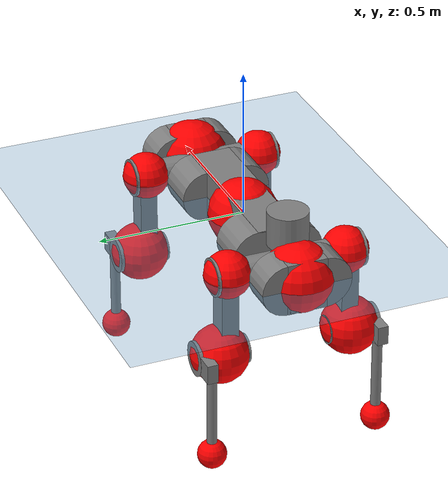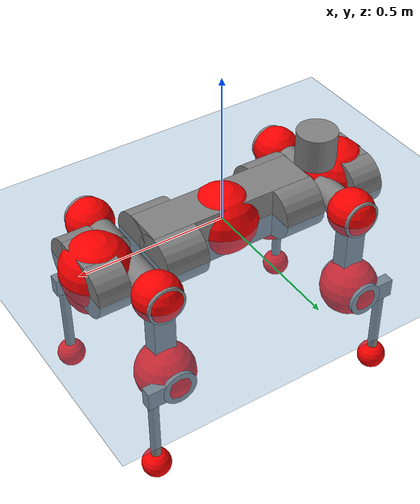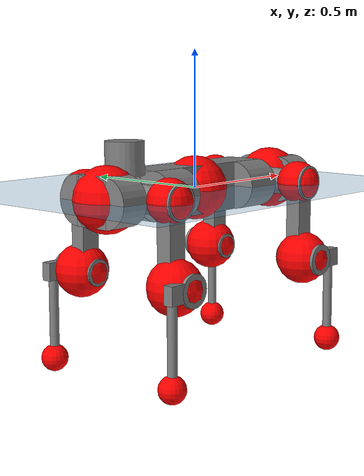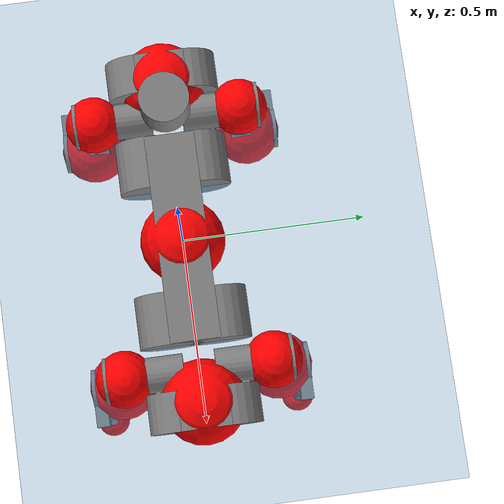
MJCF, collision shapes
<mujoco model="anymal_c">
  <compiler angle="radian" assetdir="assets" balanceinertia="true" inertiafromgeom="false"/>

  <option timestep="0.005" density="1.2" viscosity="2e-05"/>

  <size nkey="1"/>

  <visual>
    <quality shadowsize="8192"/>
    <map shadowclip="0.5"/>
  </visual>

  <default>
    <default class="/">
      <material specular="0" shininess="0.25"/>
      <geom contype="0" conaffinity="0" group="1" solref="-1000 -80"/>
      <site size="0.01 0.005 0.005" group="5"/>
      <general forcelimited="true" forcerange="-80 80" biastype="affine" gainprm="80" biasprm="0 -80 -2"/>
      <default class="anymal_c">
        <joint armature="0.01" damping="0.01" frictionloss="0.1"/>
        <default class="visual">
          <geom type="mesh" group="2"/>
          <default class="visual_zflip"/>
        </default>
        <default class="collision">
          <geom type="cylinder" group="3"/>
          <default class="foot">
            <geom size="0.03 0 0" type="sphere" condim="6" priority="1" friction="0.8 0.02 0.01" solimp="0.015 1 0.03"/>
          </default>
        </default>
      </default>
      <default class="reward_collision_sphere">
        <geom group="5" rgba="1 0 0 1"/>
      </default>
    </default>
  </default>

  <asset>
    <texture type="skybox" colorspace="auto" name="//unnamed_texture_0" builtin="gradient" rgb1="0.95 0.95 0.95" rgb2="0.95 0.95 0.95" width="100" height="600"/>
    <texture type="2d" colorspace="auto" name="texplane" builtin="checker" rgb1="0.345 0.575 0.748" rgb2="0.345 0.575 0.748" markrgb="1 1 1" width="512" height="512"/>
    <texture type="2d" colorspace="linear" name="base" file="base.png"/>
    <texture type="2d" colorspace="linear" name="top_shell" file="top_shell.png"/>
    <texture type="2d" colorspace="linear" name="bottom_shell" file="bottom_shell.png"/>
    <texture type="2d" colorspace="linear" name="remote" file="remote.png"/>
    <texture type="2d" colorspace="linear" name="hatch" file="hatch.png"/>
    <texture type="2d" colorspace="linear" name="handle" file="handle.png"/>
    <texture type="2d" colorspace="linear" name="face" file="face.png"/>
    <texture type="2d" colorspace="linear" name="battery" file="battery.png"/>
    <texture type="2d" colorspace="linear" name="lidar_cage" file="lidar_cage.png"/>
    <texture type="2d" colorspace="linear" name="depth_camera" file="depth_camera.png"/>
    <texture type="2d" colorspace="linear" name="wide_angle_camera" file="wide_angle_camera.png"/>
    <texture type="2d" colorspace="linear" name="lidar" file="lidar.png"/>
    <texture type="2d" colorspace="linear" name="drive" file="drive.png"/>
    <texture type="2d" colorspace="linear" name="hip_l" file="hip_l.png"/>
    <texture type="2d" colorspace="linear" name="shank_l" file="shank_l.png"/>
    <texture type="2d" colorspace="linear" name="foot" file="foot.png"/>
    <texture type="2d" colorspace="linear" name="thigh" file="thigh.png"/>
    <texture type="2d" colorspace="linear" name="shank_r" file="shank_r.png"/>
    <texture type="2d" colorspace="linear" name="hip_r" file="hip_r.png"/>
    <material name="MatPlane" class="/" texture="texplane" texuniform="true" texrepeat="2 2" specular="0.9" shininess="0.5"/>
    <material name="black_plastic" class="/" rgba="0.007 0.007 0.007 1"/>
    <material name="green" class="/" rgba="0.052 0.178 0.033 1"/>
    <material name="red" class="/" rgba="0.178 0.006 0.005 1"/>
    <material name="yellow" class="/" rgba="0.178 0.119 0.006 1"/>
    <material name="lwl" class="/" rgba="0.8 0.8 0.8 1"/>
    <material name="base" class="/" texture="base"/>
    <material name="top_shell" class="/" texture="top_shell"/>
    <material name="bottom_shell" class="/" texture="bottom_shell"/>
    <material name="hip_l" class="/" texture="hip_l"/>
    <material name="thigh" class="/" texture="thigh"/>
    <material name="shank_l" class="/" texture="shank_l"/>
    <material name="foot" class="/" texture="foot"/>
    <material name="hip_r" class="/" texture="hip_r"/>
    <material name="shank" class="/" texture="shank_r"/>
    <material name="hatch" class="/" texture="hatch"/>
    <material name="remote" class="/" texture="remote"/>
    <material name="handle" class="/" texture="handle"/>
    <material name="face" class="/" texture="face"/>
    <material name="depth_camera" class="/" texture="depth_camera"/>
    <material name="wide_angle_camera" class="/" texture="wide_angle_camera"/>
    <material name="battery" class="/" texture="battery"/>
    <material name="lidar_cage" class="/" texture="lidar_cage"/>
    <material name="lidar" class="/" texture="lidar"/>
    <material name="drive" class="/" texture="drive"/>
    <mesh name="base_0" class="/" file="base_0.obj"/>
    <mesh name="base_1" class="/" file="base_1.obj"/>
    <mesh name="base_2" class="/" file="base_2.obj"/>
    <mesh name="base_3" class="/" file="base_3.obj"/>
    <mesh name="base_4" class="/" file="base_4.obj"/>
    <mesh name="base_5" class="/" file="base_5.obj"/>
    <mesh name="top_shell" class="/" file="top_shell.obj"/>
    <mesh name="bottom_shell" class="/" file="bottom_shell.obj"/>
    <mesh name="remote" class="/" file="remote.obj"/>
    <mesh name="handle" class="/" file="handle.obj"/>
    <mesh name="face" class="/" file="face.obj"/>
    <mesh name="wide_angle_camera" class="/" file="wide_angle_camera.obj"/>
    <mesh name="depth_camera" class="/" file="depth_camera.obj"/>
    <mesh name="battery" class="/" file="battery.obj"/>
    <mesh name="lidar_cage" class="/" file="lidar_cage.obj"/>
    <mesh name="lidar" class="/" file="lidar.obj"/>
    <mesh name="drive" class="/" file="drive.obj"/>
    <mesh name="hip_l" class="/" file="hip_l.obj"/>
    <mesh name="thigh" class="/" file="thigh.obj"/>
    <mesh name="shank_l" class="/" file="shank_l.obj"/>
    <mesh name="foot" class="/" file="foot.obj"/>
    <mesh name="hip_r" class="/" file="hip_r.obj"/>
    <mesh name="hatch" class="/" file="hatch.obj"/>
    <mesh name="shank_r" class="/" file="shank_r.obj"/>
  </asset>

  <worldbody>
    <geom name="floor" class="/" size="100 100 0.125" type="plane" group="0" material="MatPlane"/>
    <light name="toplight_shadow" class="/" pos="0 0 5" dir="0.0990148 0.0990148 -0.990148" type="directional" ambient="0.04 0.04 0.04" diffuse="0.55 0.55 0.55" specular="0.12 0.12 0.12"/>
    <light name="toplight_fill" class="/" pos="0 0 5" dir="0.0990148 0.0990148 -0.990148" type="directional" castshadow="false" ambient="0.04 0.04 0.04" diffuse="0.3 0.3 0.3" specular="0.08 0.08 0.08"/>
    <body name="trunk" childclass="anymal_c" pos="-7.19862e-05 -1.08364e-05 0.00013433" quat="1 1.04784e-05 1.87244e-06 3.05328e-06">
      <inertial pos="0.00227186 -0.000488917 0.0491852" quat="0.492298 0.501824 0.501355 0.504439" mass="17.6938" diaginertia="0.585915 0.446851 0.21988"/>
      <joint name="//unnamed_joint_0" type="free" armature="0" damping="0" frictionloss="0"/>
      <geom name="//unnamed_geom_1" class="visual" material="green" mesh="base_0"/>
      <geom name="//unnamed_geom_2" class="visual" material="yellow" mesh="base_1"/>
      <geom name="//unnamed_geom_3" class="visual" material="red" mesh="base_2"/>
      <geom name="//unnamed_geom_4" class="visual" material="black_plastic" mesh="base_3"/>
      <geom name="//unnamed_geom_5" class="visual" material="lwl" mesh="base_4"/>
      <geom name="//unnamed_geom_6" class="visual" material="base" mesh="base_5"/>
      <geom name="trunk_1" class="collision" size="0.282551 0.0682019 0.0876882" type="box"/>
      <geom name="trunk_2" class="collision" size="0.0876882 0.0706377" pos="0.213853 0.065421 0" quat="0.707107 0 0.707107 0"/>
      <geom name="trunk_3" class="collision" size="0.0876882 0.0706377" pos="-0.213853 0.065421 0" quat="0.707107 0 0.707107 0"/>
      <geom name="trunk_4" class="collision" size="0.0876882 0.0706377" pos="0.213853 -0.065421 0" quat="0.707107 0 0.707107 0"/>
      <geom name="trunk_5" class="collision" size="0.0876882 0.0706377" pos="-0.213853 -0.065421 0" quat="0.707107 0 0.707107 0"/>
      <geom name="//unnamed_geom_12" class="visual" material="top_shell" mesh="top_shell"/>
      <geom name="//unnamed_geom_13" class="visual" material="bottom_shell" mesh="bottom_shell"/>
      <geom name="//unnamed_geom_14" class="visual" material="remote" mesh="remote"/>
      <geom name="//unnamed_geom_15" class="visual" material="handle" mesh="handle"/>
      <geom name="//unnamed_geom_16" class="visual" pos="0.407549 0 0" quat="1 0 0 0" material="face" mesh="face"/>
      <geom name="trunk_6" class="collision" size="0.0535872 0.0682019 0.0876882" pos="0.461627 0 0" type="box"/>
      <geom name="//unnamed_geom_18" class="collision" size="0.0876882 0.0535872" pos="0.461627 0.065421 0" quat="0.707107 0 0.707107 0"/>
      <geom name="//unnamed_geom_19" class="collision" size="0.0876882 0.0535872" pos="0.461627 -0.065421 0" quat="0.707107 0 0.707107 0"/>
      <geom name="//unnamed_geom_20" class="visual" pos="0.453909 0 -0.029516" quat="0.965926 0 0.258819 0" material="depth_camera" mesh="depth_camera"/>
      <geom name="//unnamed_geom_21" class="visual" pos="0.504397 0 0.0150467" material="wide_angle_camera" mesh="wide_angle_camera"/>
      <geom name="//unnamed_geom_22" class="visual_zflip" pos="-0.407549 0 0" quat="0 0 0 1" material="face" mesh="face"/>
      <geom name="trunk_7" class="collision" size="0.0535872 0.0682019 0.0876882" pos="-0.461627 0 0" quat="0 0 0 1" type="box"/>
      <geom name="//unnamed_geom_24" class="collision" size="0.0876882 0.0535872" pos="-0.461627 -0.065421 0" quat="0 -0.707107 0 0.707107"/>
      <geom name="//unnamed_geom_25" class="collision" size="0.0876882 0.0535872" pos="-0.461627 0.065421 0" quat="0 -0.707107 0 0.707107"/>
      <geom name="//unnamed_geom_26" class="visual" pos="-0.453909 0 -0.029516" quat="0 -0.258819 0 0.965926" material="depth_camera" mesh="depth_camera"/>
      <geom name="//unnamed_geom_27" class="visual_zflip" pos="-0.504397 0 0.0150467" quat="0 0 0 1" material="wide_angle_camera" mesh="wide_angle_camera"/>
      <geom name="//unnamed_geom_28" class="visual" material="battery" mesh="battery"/>
      <geom name="//unnamed_geom_29" class="visual" pos="0 0.070821 0.0290325" quat="0.683013 -0.183013 0.183013 0.683013" material="depth_camera" mesh="depth_camera"/>
      <geom name="//unnamed_geom_30" class="visual" pos="0 -0.070821 0.0290325" quat="0.683013 0.183013 0.183013 -0.683013" material="depth_camera" mesh="depth_camera"/>
      <geom name="//unnamed_geom_31" class="visual" pos="-0.357896 0 0.0738766" quat="1 0 0 0" material="lidar_cage" mesh="lidar_cage"/>
      <geom name="trunk_8" class="collision" size="0.0682019 0.0584588" pos="-0.357896 0 0.134184"/>
      <geom name="//unnamed_geom_33" class="visual" pos="-0.357896 -1.91113e-05 0.142929" quat="0.707107 0 0 -0.707107" material="lidar" mesh="lidar"/>
      <geom name="//unnamed_geom_34" class="visual" pos="0.294871 0.0972219 -1.21681e-09" quat="0.258819 0.965926 0 0" material="drive" mesh="drive"/>
      <geom name="//unnamed_geom_35" class="visual" pos="0.294871 -0.0972219 1.21681e-09" quat="0.258819 -0.965926 0 0" material="drive" mesh="drive"/>
      <geom name="//unnamed_geom_36" class="visual" pos="-0.294871 0.0972219 1.21681e-09" quat="0 0 0.965926 -0.258819" material="drive" mesh="drive"/>
      <geom name="//unnamed_geom_37" class="visual" pos="-0.294871 -0.0972219 -1.21681e-09" quat="0 0 -0.965926 -0.258819" material="drive" mesh="drive"/>
      <geom name="//unnamed_geom_38" class="visual" pos="0.114055 0 0.0733741" quat="1 0 0 0" material="hatch" mesh="hatch"/>
      <geom name="//unnamed_geom_39" class="reward_collision_sphere" size="0.116918"/>
      <geom name="//unnamed_geom_40" class="reward_collision_sphere" size="0.116918" pos="0.442454 0 0"/>
      <geom name="//unnamed_geom_41" class="reward_collision_sphere" size="0.116918" pos="-0.442454 0 0"/>
      <site name="imu" pos="0.243964 0.00331946 0.046498" size="0.00974313"/>
      <camera name="track" pos="0 -1.86917 0" quat="0.707107 0.707107 0 0" mode="trackcom"/>
      <camera name="ego_camera" pos="0.442454 0 -0.040205" quat="-0.5 -0.5 0.5 0.5"/>
      <body name="LF_HIP" pos="0.294711 0.0993712 0.000792904" quat="0.258762 0.965941 -6.70532e-05 1.54159e-05">
        <inertial pos="0.0552744 -0.0139929 -0.00917957" quat="-0.127305 0.709092 -0.134683 0.680325" mass="2.58015" diaginertia="0.005377 0.0035296 0.00340061"/>
        <joint name="LF_HAA" pos="0 0 0" axis="0.999997 -0.000324809 -0.00242954" range="-0.683016 0.470387" armature="0.00990174" damping="0.00699503" frictionloss="0.094682"/>
        <geom name="//unnamed_geom_42" class="visual" pos="0 -7.15794e-05 1.17569e-05" quat="0.258819 -0.965926 0 0" material="hip_l" mesh="hip_l"/>
        <geom name="//unnamed_geom_43" class="visual" pos="0.0588955 -0.070749 -0.0413687" quat="0.183013 -0.683013 0.683013 0.183013" material="drive" mesh="drive"/>
        <geom name="//unnamed_geom_44" class="collision" size="0.0487157 0.0682019" pos="0.0588955 -0.0111775 -0.00694038" quat="-0.353553 -0.612372 0.612372 -0.353553"/>
        <body name="LF_THIGH" pos="0.0591066 -0.0666878 -0.0418997" quat="0.183009 -0.683166 0.682874 0.182963">
          <inertial pos="0.0301935 -0.000716753 -0.246368" quat="0.992983 -0.00795076 -0.0812577 0.0855545" mass="2.83985" diaginertia="0.0277616 0.0212594 0.00429256"/>
          <joint name="LF_HFE" pos="0 0 0" axis="0.999997 0.00033248 -0.0023553" stiffness="0.000168293" range="-3.16166 3.16018" armature="0.00988067" damping="0.00963518" frictionloss="0.0939328"/>
          <geom name="//unnamed_geom_45" class="visual" pos="0.000967842 1.52509e-06 0" quat="0.707107 0 0 -0.707107" material="thigh" mesh="thigh"/>
          <geom name="//unnamed_geom_46" class="collision" size="0.0633304 0.0389725" pos="0.0393292 0 0" quat="0.5 0.5 -0.5 -0.5"/>
          <geom name="//unnamed_geom_47" class="collision" size="0.0365367 0.0292294 0.137684" pos="0.0294969 0 -0.142038" quat="0.707107 0 0 -0.707107" type="box"/>
          <geom name="//unnamed_geom_48" class="visual" pos="0.098618 0 -0.28646" quat="1 0 0 0" material="drive" mesh="drive"/>
          <geom name="//unnamed_geom_49" class="collision" size="0.0487157 0.0682019" pos="0.0297919 0 -0.28646" quat="0.707107 0 0.707107 0"/>
          <geom name="//unnamed_geom_50" class="reward_collision_sphere" size="0.0779451" pos="0.0245808 0 0"/>
          <body name="LF_SHANK" pos="0.0993133 -0.00153153 -0.286062" quat="1 -8.54305e-05 -0.000373473 0.000149004">
            <inertial pos="0.00470915 -0.0571582 -0.0826504" quat="0.992929 -0.115968 -0.000982342 -0.0253482" mass="0.54211" diaginertia="0.00936451 0.00670441 0.00112986"/>
            <joint name="LF_KFE" pos="0 0 0" axis="0.999994 -0.00190828 -0.00274128" range="-3.17035 3.14364" armature="0.0101565" damping="0.00920741" frictionloss="0.0978685"/>
            <geom name="//unnamed_geom_51" class="visual" pos="0.000315592 0.00168275 0" quat="0.707107 0 0 -0.707107" material="shank_l" mesh="shank_l"/>
            <geom name="LF_kfe_act" class="collision" size="0.0584588 0.0194863" pos="0.0196646 0 0" quat="0.5 0.5 -0.5 -0.5"/>
            <geom name="//unnamed_geom_53" class="collision" size="0.056022 0.0328831 0.018512" pos="0.0196646 -0.0537377 0" quat="0.5 0.5 -0.5 -0.5" type="box"/>
            <geom name="//unnamed_geom_54" class="visual" pos="0.0128311 -0.0816545 -0.339702" quat="0.382683 0 0 -0.92388" material="foot" mesh="foot"/>
            <geom name="LF_calf" class="collision" size="0.0170505 0.137624" pos="0.0128312 -0.0821968 -0.169851" quat="0.707107 0 0 -0.707107"/>
            <geom name="LF_foot" class="foot" size="0.029923" pos="0.0128312 -0.0821968 -0.317087" quat="0.707107 0 0 -0.707107"/>
            <geom name="//unnamed_geom_57" class="reward_collision_sphere" size="0.0974313" pos="-0.0491615 0 0"/>
            <geom name="//unnamed_geom_58" class="reward_collision_sphere" size="0.0487157" pos="0.0128312 -0.0821968 -0.317087"/>
            <site name="LF_foot" class="foot" pos="0.0128312 -0.0821968 -0.317087" quat="0.707107 0 0 -0.707107" size="0.00974313"/>
          </body>
        </body>
      </body>
      <body name="RF_HIP" pos="0.295047 -0.0971546 0.00134694" quat="0.258828 -0.965923 3.91001e-05 5.63972e-06">
        <inertial pos="0.0564547 0.0148005 -0.00821581" quat="0.136052 0.679186 0.12862 0.709685" mass="2.5502" diaginertia="0.00540866 0.00342953 0.00338381"/>
        <joint name="RF_HAA" pos="0 0 0" axis="0.999999 0.00104548 1.00406e-08" range="-0.490287 0.72323" armature="0.00958273" damping="0.00804942" frictionloss="0.0945324"/>
        <geom name="//unnamed_geom_59" class="visual" pos="0 7.15788e-05 1.17568e-05" quat="0.258819 0.965926 0 0" material="hip_r" mesh="hip_r"/>
        <geom name="//unnamed_geom_60" class="visual" pos="0.0588955 0.070749 -0.0413687" quat="0.183013 0.683013 0.683013 -0.183013" material="drive" mesh="drive"/>
        <geom name="//unnamed_geom_61" class="collision" size="0.0487157 0.0682019" pos="0.0588955 0.0111775 -0.00694038" quat="-0.353553 0.612372 0.612372 0.353553"/>
        <body name="RF_THIGH" pos="0.0603829 0.0697436 -0.0433729" quat="0.182668 0.682896 0.683128 -0.183362">
          <inertial pos="0.0313457 -0.00172023 -0.246481" quat="0.993092 -0.00466615 -0.0766537 0.0887216" mass="2.83978" diaginertia="0.0279286 0.0213993 0.00435348"/>
          <joint name="RF_HFE" pos="0 0 0" axis="1 0.000679085 0.000637139" stiffness="0.00160145" range="-3.16715 3.13827" armature="0.00989909" damping="0.00999409" frictionloss="0.0976516"/>
          <geom name="//unnamed_geom_62" class="visual" pos="0.000967842 1.52509e-06 0" quat="0.707107 0 0 -0.707107" material="thigh" mesh="thigh"/>
          <geom name="//unnamed_geom_63" class="collision" size="0.0633304 0.0389725" pos="0.0393292 0 0" quat="0.5 0.5 0.5 0.5"/>
          <geom name="//unnamed_geom_64" class="collision" size="0.0365367 0.0292294 0.137684" pos="0.0294969 0 -0.142038" quat="0.707107 0 0 0.707107" type="box"/>
          <geom name="//unnamed_geom_65" class="visual" pos="0.098618 0 -0.28646" quat="1 0 0 0" material="drive" mesh="drive"/>
          <geom name="//unnamed_geom_66" class="collision" size="0.0487157 0.0682019" pos="0.0297919 0 -0.28646" quat="0.707107 0 0.707107 0"/>
          <geom name="//unnamed_geom_67" class="reward_collision_sphere" size="0.0779451" pos="0.0245808 0 0"/>
          <body name="RF_SHANK" pos="0.0972834 0.000990021 -0.285935" quat="1 0.000240063 8.52112e-05 -0.000177423">
            <inertial pos="0.00471699 0.0571897 -0.0813287" quat="0.993275 0.113584 -0.000960553 0.0223976" mass="0.545378" diaginertia="0.0093785 0.00658009 0.00114342"/>
            <joint name="RF_KFE" pos="0 0 0" axis="0.999955 0.0094485 0.000997259" range="-3.129 3.14129" armature="0.0102976" damping="0.0139212" frictionloss="0.0947609"/>
            <geom name="//unnamed_geom_68" class="visual" pos="0.000315591 -0.00168275 0" quat="0.707107 0 0 0.707107" material="shank" mesh="shank_r"/>
            <geom name="RF_kfe_act" class="collision" size="0.0584588 0.0194863" pos="0.0196646 0 0" quat="0.5 0.5 0.5 0.5"/>
            <geom name="//unnamed_geom_70" class="collision" size="0.056022 0.0328831 0.018512" pos="0.0196646 0.0537377 0" quat="0.5 0.5 0.5 0.5" type="box"/>
            <geom name="//unnamed_geom_71" class="visual" pos="0.0128312 0.0816545 -0.339702" quat="0.382683 0 0 0.92388" material="foot" mesh="foot"/>
            <geom name="RF_calf" class="collision" size="0.0170505 0.137624" pos="0.0128312 0.0821968 -0.169851" quat="0.707107 0 0 0.707107"/>
            <geom name="RF_foot" class="foot" size="0.0305035" pos="0.0128312 0.0821968 -0.317087" quat="0.707107 0 0 0.707107"/>
            <geom name="//unnamed_geom_74" class="reward_collision_sphere" size="0.0974313" pos="-0.0491615 0 0"/>
            <geom name="//unnamed_geom_75" class="reward_collision_sphere" size="0.0487157" pos="0.0128312 0.0821968 -0.317087"/>
            <site name="RF_foot" class="foot" pos="0.0128312 0.0821968 -0.317087" quat="0.707107 0 0 0.707107" size="0.00974313"/>
          </body>
        </body>
      </body>
      <body name="LH_HIP" pos="-0.293837 0.098219 -0.000771489" quat="0.00031872 0.000206823 0.965951 -0.258726">
        <inertial pos="0.056064 0.0137048 -0.00932393" quat="0.134974 0.67952 0.126997 0.709863" mass="2.53608" diaginertia="0.00531466 0.00346798 0.00333059"/>
        <joint name="LH_HAA" pos="0 0 0" axis="1 -4.22864e-05 8.89295e-05" range="-0.486719 0.738455" armature="0.00967892" damping="0.00865506" frictionloss="0.0995709"/>
        <geom name="//unnamed_geom_76" class="visual" pos="0 7.15788e-05 1.17568e-05" quat="-0.258819 -0.965926 0 0" material="hip_r" mesh="hip_r"/>
        <geom name="//unnamed_geom_77" class="visual" pos="0.0588955 0.070749 -0.0413687" quat="0.183013 0.683013 0.683013 -0.183013" material="drive" mesh="drive"/>
        <geom name="//unnamed_geom_78" class="collision" size="0.0487157 0.0682019" pos="0.0588955 0.0111775 -0.00694038" quat="-0.353553 0.612372 0.612372 0.353553"/>
        <body name="LH_THIGH" pos="0.0587669 0.0669978 -0.0439239" quat="0.182905 0.683143 0.682898 -0.183065">
          <inertial pos="0.0305969 -0.000504788 -0.248065" quat="0.993114 -0.00588658 -0.0810358 0.084403" mass="2.87611" diaginertia="0.0275583 0.0208907 0.00424696"/>
          <joint name="LH_HFE" pos="0 0 0" axis="0.999992 -0.000688557 0.00395084" stiffness="0.000594515" range="-3.14435 3.12422" armature="0.0100775" damping="0.00488821" frictionloss="0.0964964"/>
          <geom name="//unnamed_geom_79" class="visual" pos="0.000967842 1.52509e-06 0" quat="0.707107 0 0 -0.707107" material="thigh" mesh="thigh"/>
          <geom name="//unnamed_geom_80" class="collision" size="0.0633304 0.0389725" pos="0.0393292 0 0" quat="0.5 0.5 -0.5 -0.5"/>
          <geom name="//unnamed_geom_81" class="collision" size="0.0365367 0.0292294 0.137684" pos="0.0294969 0 -0.142038" quat="0.707107 0 0 -0.707107" type="box"/>
          <geom name="//unnamed_geom_82" class="visual" pos="0.098618 0 -0.28646" quat="1 0 0 0" material="drive" mesh="drive"/>
          <geom name="//unnamed_geom_83" class="collision" size="0.0487157 0.0682019" pos="0.0297919 0 -0.28646" quat="0.707107 0 0.707107 0"/>
          <geom name="//unnamed_geom_84" class="reward_collision_sphere" size="0.0779451" pos="0.0245808 0 0"/>
          <body name="LH_SHANK" pos="0.0994253 -0.00245475 -0.28754" quat="1 -8.86768e-06 0.000153259 3.4807e-06">
            <inertial pos="0.00523913 0.057107 -0.0816035" quat="0.993079 0.114711 -0.00167236 0.0251613" mass="0.533424" diaginertia="0.00932111 0.00653985 0.00113678"/>
            <joint name="LH_KFE" pos="0 0 0" axis="0.999997 0.0025422 -0.000339899" range="-3.11435 3.14135" armature="0.00960129" damping="0.0139883" frictionloss="0.0975034"/>
            <geom name="//unnamed_geom_85" class="visual" pos="0.000315591 -0.00168275 0" quat="-0.707107 0 0 -0.707107" material="shank" mesh="shank_r"/>
            <geom name="LH_kfe_act" class="collision" size="0.0584588 0.0194863" pos="0.0196646 0 0" quat="0.5 0.5 -0.5 -0.5"/>
            <geom name="//unnamed_geom_87" class="collision" size="0.056022 0.0328831 0.018512" pos="0.0196646 0.0537377 0" quat="0.5 0.5 -0.5 -0.5" type="box"/>
            <geom name="//unnamed_geom_88" class="visual" pos="0.0128312 0.0816545 -0.339702" quat="-0.382683 0 0 -0.92388" material="foot" mesh="foot"/>
            <geom name="LH_calf" class="collision" size="0.0170505 0.137624" pos="0.0128312 0.0821968 -0.169851" quat="0.707107 0 0 -0.707107"/>
            <geom name="LH_foot" class="foot" size="0.029575" pos="0.0128312 0.0821968 -0.317087" quat="0.707107 0 0 -0.707107"/>
            <geom name="//unnamed_geom_91" class="reward_collision_sphere" size="0.0974313" pos="-0.0491615 0 0"/>
            <geom name="//unnamed_geom_92" class="reward_collision_sphere" size="0.0487157" pos="0.0128312 0.0821968 -0.317087"/>
            <site name="LH_foot" class="foot" pos="0.0128312 0.0821968 -0.317087" quat="0.707107 0 0 -0.707107" size="0.00974313"/>
          </body>
        </body>
      </body>
      <body name="RH_HIP" pos="-0.294748 -0.0980916 0.0010636" quat="2.68578e-05 -4.77296e-05 -0.965914 -0.258862">
        <inertial pos="0.0556789 -0.0138916 -0.00796843" quat="-0.127867 0.709876 -0.134769 0.679385" mass="2.53324" diaginertia="0.00531484 0.00343683 0.00338395"/>
        <joint name="RH_HAA" pos="0 0 0" axis="0.999998 0.00205928 0.000669285" range="-0.733349 0.472055" armature="0.00971348" damping="0.00876773" frictionloss="0.0989389"/>
        <geom name="//unnamed_geom_93" class="visual" pos="0 -7.15794e-05 1.17569e-05" quat="-0.258819 0.965926 0 0" material="hip_l" mesh="hip_l"/>
        <geom name="//unnamed_geom_94" class="visual" pos="0.0588955 -0.070749 -0.0413687" quat="-0.183013 0.683013 -0.683013 -0.183013" material="drive" mesh="drive"/>
        <geom name="//unnamed_geom_95" class="collision" size="0.0487157 0.0682019" pos="0.0588955 -0.0111775 -0.00694038" quat="0.353553 0.612372 -0.612372 0.353553"/>
        <body name="RH_THIGH" pos="0.0583946 -0.067878 -0.0429174" quat="-0.182916 0.683303 -0.682883 -0.18251">
          <inertial pos="0.0305349 -0.00109358 -0.247535" quat="0.993115 -0.00422567 -0.0816911 0.0838564" mass="2.85792" diaginertia="0.0281098 0.0214486 0.00433905"/>
          <joint name="RH_HFE" pos="0 0 0" axis="0.999988 0.00365647 -0.00318142" range="-3.13162 3.12637" armature="0.00987884" damping="0.00580821" frictionloss="0.0998458"/>
          <geom name="//unnamed_geom_96" class="visual" pos="0.000967842 1.52509e-06 0" quat="0.707107 0 0 -0.707107" material="thigh" mesh="thigh"/>
          <geom name="//unnamed_geom_97" class="collision" size="0.0633304 0.0389725" pos="0.0393292 0 0" quat="0.5 0.5 0.5 0.5"/>
          <geom name="//unnamed_geom_98" class="collision" size="0.0365367 0.0292294 0.137684" pos="0.0294969 0 -0.142038" quat="0.707107 0 0 0.707107" type="box"/>
          <geom name="//unnamed_geom_99" class="visual" pos="0.098618 0 -0.28646" quat="1 0 0 0" material="drive" mesh="drive"/>
          <geom name="//unnamed_geom_100" class="collision" size="0.0487157 0.0682019" pos="0.0297919 0 -0.28646" quat="0.707107 0 0.707107 0"/>
          <geom name="//unnamed_geom_101" class="reward_collision_sphere" size="0.0779451" pos="0.0245808 0 0"/>
          <body name="RH_SHANK" pos="0.0960785 0.000804998 -0.285614" quat="1 0.000544423 -8.57303e-06 0.000236522">
            <inertial pos="0.00727817 -0.0572217 -0.0808795" quat="0.992745 -0.117839 0.00179245 -0.0238565" mass="0.546194" diaginertia="0.00947279 0.00661839 0.00115559"/>
            <joint name="RH_KFE" pos="0 0 0" axis="1 -5.7889e-05 -2.57624e-05" range="-3.12838 3.15808" armature="0.00928085" damping="0.00852082" frictionloss="0.0982443"/>
            <geom name="//unnamed_geom_102" class="visual" pos="0.000315592 0.00168275 0" quat="0.707107 0 0 -0.707107" material="shank_l" mesh="shank_l"/>
            <geom name="RH_kfe_act" class="collision" size="0.0584588 0.0194863" pos="0.0196646 0 0" quat="0.5 0.5 0.5 0.5"/>
            <geom name="//unnamed_geom_104" class="collision" size="0.056022 0.0328831 0.018512" pos="0.0196646 -0.0537377 0" quat="0.5 0.5 0.5 0.5" type="box"/>
            <geom name="//unnamed_geom_105" class="visual" pos="0.0128311 -0.0816545 -0.339702" quat="0.382683 0 0 -0.92388" material="foot" mesh="foot"/>
            <geom name="RH_calf" class="collision" size="0.0170505 0.137624" pos="0.0128312 -0.0821968 -0.169851" quat="0.707107 0 0 0.707107"/>
            <geom name="RH_foot" class="foot" size="0.0292349" pos="0.0128312 -0.0821968 -0.317087" quat="0.707107 0 0 0.707107"/>
            <geom name="//unnamed_geom_108" class="reward_collision_sphere" size="0.0974313" pos="-0.0491615 0 0"/>
            <geom name="//unnamed_geom_109" class="reward_collision_sphere" size="0.0487157" pos="0.0128312 -0.0821968 -0.317087"/>
            <site name="RH_foot" class="foot" pos="0.0128312 -0.0821968 -0.317087" quat="0.707107 0 0 0.707107" size="0.00974313"/>
          </body>
        </body>
      </body>
    </body>
  </worldbody>

  <contact>
    <pair class="/" geom1="floor" geom2="LF_foot" name="//unnamed_contact_0"/>
    <pair class="/" geom1="floor" geom2="RF_foot" name="//unnamed_contact_1"/>
    <pair class="/" geom1="floor" geom2="LH_foot" name="//unnamed_contact_2"/>
    <pair class="/" geom1="floor" geom2="RH_foot" name="//unnamed_contact_3"/>
  </contact>

  <actuator>
    <general name="LF_HAA" class="/" joint="LF_HAA" forcerange="-84.106 84.106" gainprm="79.692" biasprm="0 -79.692 -1.88642"/>
    <general name="LF_HFE" class="/" joint="LF_HFE" forcerange="-80.3625 80.3625" gainprm="79.692" biasprm="0 -79.692 -1.88642"/>
    <general name="LF_KFE" class="/" joint="LF_KFE" forcerange="-77.1925 77.1925" gainprm="79.692" biasprm="0 -79.692 -1.88642"/>
    <general name="RF_HAA" class="/" joint="RF_HAA" forcerange="-82.2729 82.2729" gainprm="79.692" biasprm="0 -79.692 -1.88642"/>
    <general name="RF_HFE" class="/" joint="RF_HFE" forcerange="-83.346 83.346" gainprm="79.692" biasprm="0 -79.692 -1.88642"/>
    <general name="RF_KFE" class="/" joint="RF_KFE" forcerange="-76.7887 76.7887" gainprm="79.692" biasprm="0 -79.692 -1.88642"/>
    <general name="LH_HAA" class="/" joint="LH_HAA" forcerange="-76.9801 76.9801" gainprm="79.692" biasprm="0 -79.692 -1.88642"/>
    <general name="LH_HFE" class="/" joint="LH_HFE" forcerange="-79.2979 79.2979" gainprm="79.692" biasprm="0 -79.692 -1.88642"/>
    <general name="LH_KFE" class="/" joint="LH_KFE" forcerange="-81.4194 81.4194" gainprm="79.692" biasprm="0 -79.692 -1.88642"/>
    <general name="RH_HAA" class="/" joint="RH_HAA" forcerange="-74.4148 74.4148" gainprm="79.692" biasprm="0 -79.692 -1.88642"/>
    <general name="RH_HFE" class="/" joint="RH_HFE" forcerange="-77.0929 77.0929" gainprm="79.692" biasprm="0 -79.692 -1.88642"/>
    <general name="RH_KFE" class="/" joint="RH_KFE" forcerange="-77.8505 77.8505" gainprm="79.692" biasprm="0 -79.692 -1.88642"/>
  </actuator>

  <sensor>
    <gyro site="imu" name="imu_angular_velocity"/>
    <velocimeter site="imu" name="imu_linear_velocity"/>
    <framelinvel objtype="site" objname="LF_foot" name="LF_foot_global_linear_velocity"/>
    <framelinvel objtype="site" objname="RF_foot" name="RF_foot_global_linear_velocity"/>
    <framelinvel objtype="site" objname="LH_foot" name="LH_foot_global_linear_velocity"/>
    <framelinvel objtype="site" objname="RH_foot" name="RH_foot_global_linear_velocity"/>
  </sensor>

  <keyframe>
    <key name="home" qpos="0 0 0.55 1 0 0 0 0 0.4 -0.8 0 -0.4 0.8 0 -0.4 0.8 0 0.4 -0.8"/>
  </keyframe>
</mujoco>
